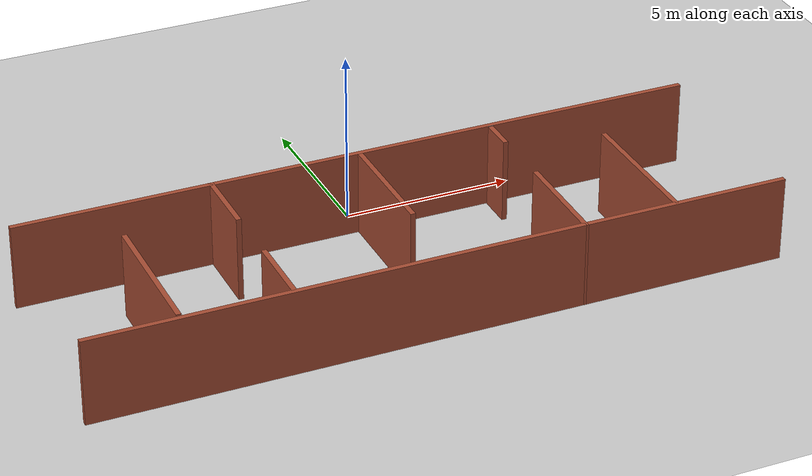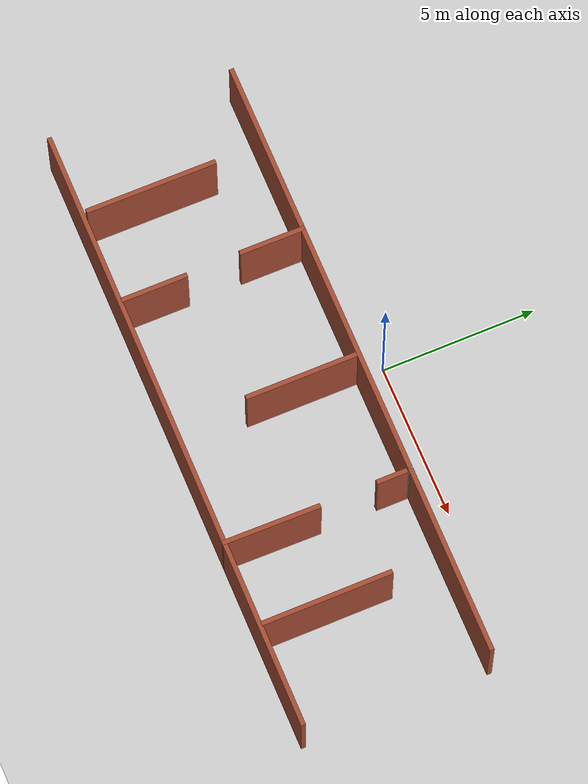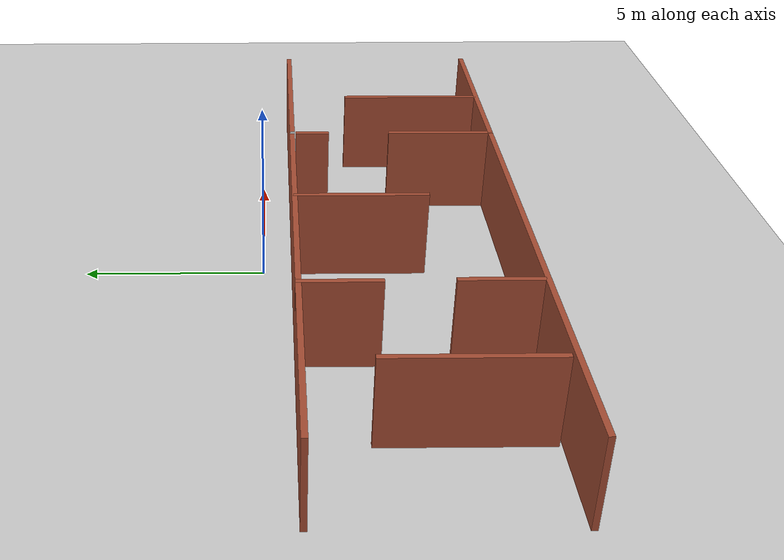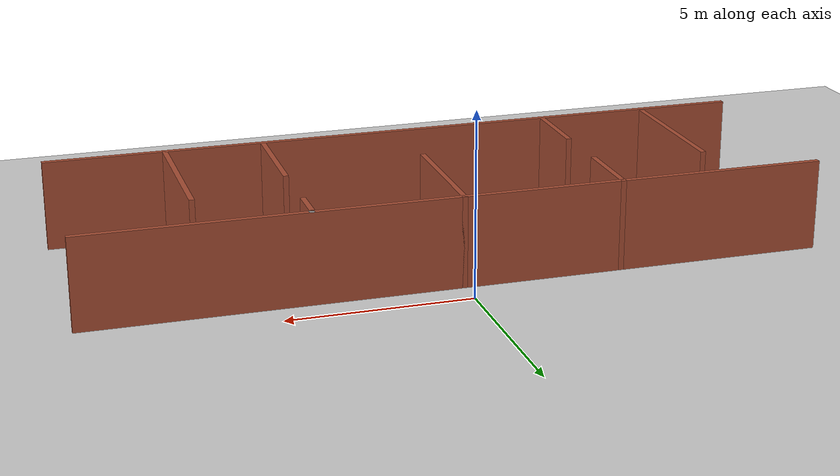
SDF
<sdf version="1.4">
 <world name="default">
  <light type="directional" name="sun">
   <cast_shadows>false</cast_shadows>
   <pose>-6 2 5 -0.5 -0.5 0</pose>
   <diffuse>0.8 0.8 0.8 1</diffuse>
   <specular>0.9 0.9 0.9 1</specular>
   <attenuation>
    <range>1000</range>
    <constant>0.9</constant>
    <linear>0.01</linear>
    <quadratic>0.001</quadratic>
   </attenuation>
   <direction>0 0 -1</direction>
  </light>
  <light type="directional" name="sun2">
   <cast_shadows>false</cast_shadows>
   <pose>-3 -7 5 0.5 0.5 0</pose>
   <diffuse>0.8 0.8 0.8 1</diffuse>
   <specular>0.9 0.9 0.9 1</specular>
   <attenuation>
    <range>1000</range>
    <constant>0.9</constant>
    <linear>0.01</linear>
    <quadratic>0.001</quadratic>
   </attenuation>
   <direction>0 0 -1</direction>
  </light>
  <model name="ground_plane">
   <static>1</static>
   <link name="link">
    <collision name="collision">
     <geometry><plane><normal>0 0 1</normal><size>100 100</size></plane></geometry>
     <surface><friction><ode><mu>100</mu><mu2>50</mu2></ode></friction></surface>
    </collision>
    <visual name="visual">
     <cast_shadows>0</cast_shadows>
     <geometry><plane><normal>0 0 1</normal><size>100 100</size></plane></geometry>
     <material>
      <script><uri>file://media/materials/scripts/gazebo.material</uri><name>Gazebo/Grey</name></script>
     </material>
    </visual>
    <velocity_decay><linear>0</linear><angular>0</angular></velocity_decay>
   </link>
  </model>
  <scene><ambient>0.4 0.4 0.4 1</ambient><background>0.7 0.7 0.7 1</background><shadows>0</shadows></scene>
  <physics type="ode">
   <max_step_size>0.0015</max_step_size>
   <real_time_factor>1</real_time_factor>
   <real_time_update_rate>0</real_time_update_rate>
   <gravity>0 0 -9.8</gravity>
  </physics>
  <include><uri>model://simple_maze</uri><pose>0 -3.85 0 0 0 1.567</pose></include>
 </world>
</sdf>

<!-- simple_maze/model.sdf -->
<sdf version='1.6'>
  <model name='simple_maze'>
    <pose frame=''>-0.000434 0.0095 0 0 -0 0</pose>
    <link name='Wall_10'>
      <collision name='Wall_10_Collision'>
        <geometry>
          <box>
            <size>0.15 0.15 2.5</size>
          </box>
        </geometry>
        <pose frame=''>0 0 1.25 0 -0 0</pose>
      </collision>
      <visual name='Wall_10_Visual'>
        <pose frame=''>0 0 1.25 0 -0 0</pose>
        <geometry>
          <box>
            <size>0.15 0.15 2.5</size>
          </box>
        </geometry>
        <material>
          <script>
            <uri>file://media/materials/scripts/gazebo.material</uri>
            <name>Gazebo/Grey</name>
          </script>
          <ambient>1 1 1 1</ambient>
        </material>
      </visual>
      <pose frame=''>3.00043 -4.0095 0 0 -0 0</pose>
    </link>
    <link name='Wall_12'>
      <collision name='Wall_12_Collision'>
        <geometry>
          <box>
            <size>1 0.15 2.5</size>
          </box>
        </geometry>
        <pose frame=''>0 0 1.25 0 -0 0</pose>
      </collision>
      <visual name='Wall_12_Visual'>
        <pose frame=''>0 0 1.25 0 -0 0</pose>
        <geometry>
          <box>
            <size>1 0.15 2.5</size>
          </box>
        </geometry>
        <material>
          <script>
            <uri>file://media/materials/scripts/gazebo.material</uri>
            <name>Gazebo/Bricks</name>
          </script>
          <ambient>1 1 1 1</ambient>
        </material>
      </visual>
      <pose frame=''>2.39443 -3.9855 0 0 -0 3.14159</pose>
    </link>
    <link name='Wall_14'>
      <collision name='Wall_14_Collision'>
        <geometry>
          <box>
            <size>3.75 0.15 2.5</size>
          </box>
        </geometry>
        <pose frame=''>0 0 1.25 0 -0 0</pose>
      </collision>
      <visual name='Wall_14_Visual'>
        <pose frame=''>0 0 1.25 0 -0 0</pose>
        <geometry>
          <box>
            <size>3.75 0.15 2.5</size>
          </box>
        </geometry>
        <material>
          <script>
            <uri>file://media/materials/scripts/gazebo.material</uri>
            <name>Gazebo/Bricks</name>
          </script>
          <ambient>1 1 1 1</ambient>
        </material>
      </visual>
      <pose frame=''>1.20043 -0.0095 0 0 -0 3.14159</pose>
    </link>
    <link name='Wall_17'>
      <collision name='Wall_17_Collision'>
        <geometry>
          <box>
            <size>4.25 0.15 2.5</size>
          </box>
        </geometry>
        <pose frame=''>0 0 1.25 0 -0 0</pose>
      </collision>
      <visual name='Wall_17_Visual'>
        <pose frame=''>0 0 1.25 0 -0 0</pose>
        <geometry>
          <box>
            <size>4.25 0.15 2.5</size>
          </box>
        </geometry>
        <material>
          <script>
            <uri>file://media/materials/scripts/gazebo.material</uri>
            <name>Gazebo/Bricks</name>
          </script>
          <ambient>1 1 1 1</ambient>
        </material>
      </visual>
      <pose frame=''>-0.876566 -6.7225 0 0 -0 0</pose>
    </link>
    <link name='Wall_20'>
      <collision name='Wall_20_Collision'>
        <geometry>
          <box>
            <size>2.15 0.15 2.5</size>
          </box>
        </geometry>
        <pose frame=''>0 0 1.25 0 -0 0</pose>
      </collision>
      <visual name='Wall_20_Visual'>
        <pose frame=''>0 0 1.25 0 -0 0</pose>
        <geometry>
          <box>
            <size>2.15 0.15 2.5</size>
          </box>
        </geometry>
        <material>
          <script>
            <uri>file://media/materials/scripts/gazebo.material</uri>
            <name>Gazebo/Bricks</name>
          </script>
          <ambient>1 1 1 1</ambient>
        </material>
      </visual>
      <pose frame=''>-1.87857 4.3175 0 0 -0 0</pose>
    </link>
    <link name='Wall_22'>
      <collision name='Wall_22_Collision'>
        <geometry>
          <box>
            <size>2.15 0.15 2.5</size>
          </box>
        </geometry>
        <pose frame=''>0 0 1.25 0 -0 0</pose>
      </collision>
      <visual name='Wall_22_Visual'>
        <pose frame=''>0 0 1.25 0 -0 0</pose>
        <geometry>
          <box>
            <size>2.15 0.15 2.5</size>
          </box>
        </geometry>
        <material>
          <script>
            <uri>file://media/materials/scripts/gazebo.material</uri>
            <name>Gazebo/Bricks</name>
          </script>
          <ambient>1 1 1 1</ambient>
        </material>
      </visual>
      <pose frame=''>2.00043 4.3575 0 0 -0 3.14159</pose>
    </link>
    <link name='Wall_24'>
      <collision name='Wall_24_Collision'>
        <geometry>
          <box>
            <size>4.25 0.15 2.5</size>
          </box>
        </geometry>
        <pose frame=''>0 0 1.25 0 -0 0</pose>
      </collision>
      <visual name='Wall_24_Visual'>
        <pose frame=''>0 0 1.25 0 -0 0</pose>
        <geometry>
          <box>
            <size>4.25 0.15 2.5</size>
          </box>
        </geometry>
        <material>
          <script>
            <uri>file://media/materials/scripts/gazebo.material</uri>
            <name>Gazebo/Bricks</name>
          </script>
          <ambient>1 1 1 1</ambient>
        </material>
      </visual>
      <pose frame=''>-0.729566 7.4095 0 0 -0 0</pose>
    </link>
    <link name='Wall_3'>
      <collision name='Wall_3_Collision'>
        <geometry>
          <box>
            <size>20.15 0.15 2.5</size>
          </box>
        </geometry>
        <pose frame=''>0 0 1.25 0 -0 0</pose>
      </collision>
      <visual name='Wall_3_Visual'>
        <pose frame=''>0 0 1.25 0 -0 0</pose>
        <geometry>
          <box>
            <size>20.15 0.15 2.5</size>
          </box>
        </geometry>
        <material>
          <script>
            <uri>file://media/materials/scripts/gazebo.material</uri>
            <name>Gazebo/Bricks</name>
          </script>
          <ambient>1 1 1 1</ambient>
        </material>
      </visual>
      <pose frame=''>-2.99957 0.0145 0 0 -0 1.5708</pose>
    </link>
    <link name='Wall_5'>
      <collision name='Wall_5_Collision'>
        <geometry>
          <box>
            <size>20.15 0.15 2.5</size>
          </box>
        </geometry>
        <pose frame=''>0 0 1.25 0 -0 0</pose>
      </collision>
      <visual name='Wall_5_Visual'>
        <pose frame=''>0 0 1.25 0 -0 0</pose>
        <geometry>
          <box>
            <size>20.15 0.15 2.5</size>
          </box>
        </geometry>
        <material>
          <script>
            <uri>file://media/materials/scripts/gazebo.material</uri>
            <name>Gazebo/Bricks</name>
          </script>
          <ambient>1 1 1 1</ambient>
        </material>
      </visual>
      <pose frame=''>3.00043 -0.0145 0 0 -0 1.5708</pose>
    </link>
    <link name='Wall_8'>
      <collision name='Wall_8_Collision'>
        <geometry>
          <box>
            <size>3.1502 0.15 2.5</size>
          </box>
        </geometry>
        <pose frame=''>0 0 1.25 0 -0 0</pose>
      </collision>
      <visual name='Wall_8_Visual'>
        <pose frame=''>0 0 1.25 0 -0 0</pose>
        <geometry>
          <box>
            <size>3.1502 0.15 2.5</size>
          </box>
        </geometry>
        <material>
          <script>
            <uri>file://media/materials/scripts/gazebo.material</uri>
            <name>Gazebo/Bricks</name>
          </script>
          <ambient>1 1 1 1</ambient>
        </material>
      </visual>
      <pose frame=''>-1.49957 -3.992 0 0 0 -0.011666</pose>
    </link>
    <static>1</static>
  </model>
</sdf>
